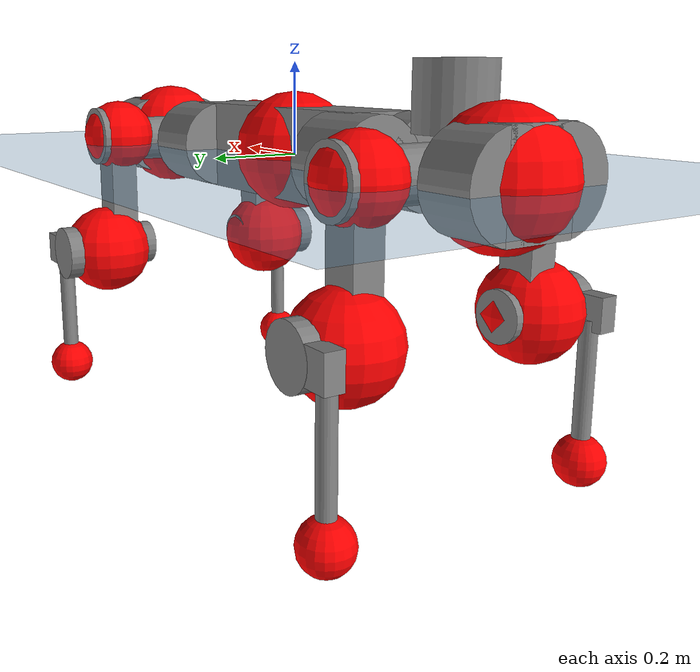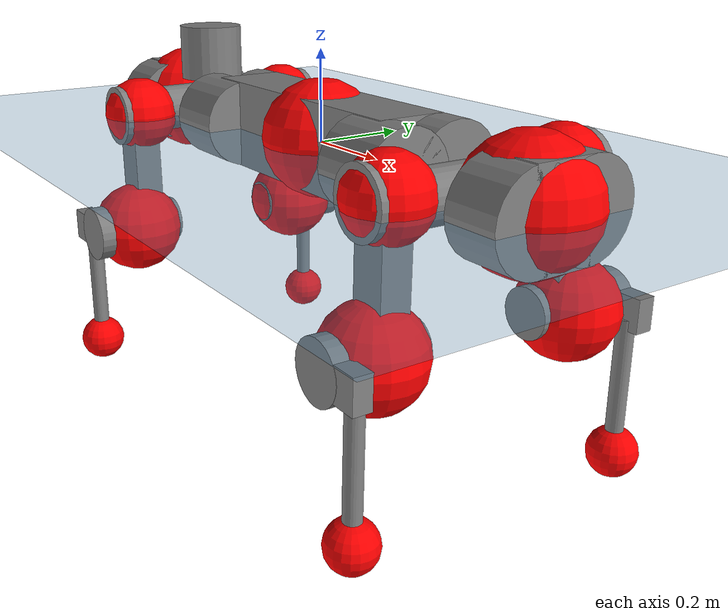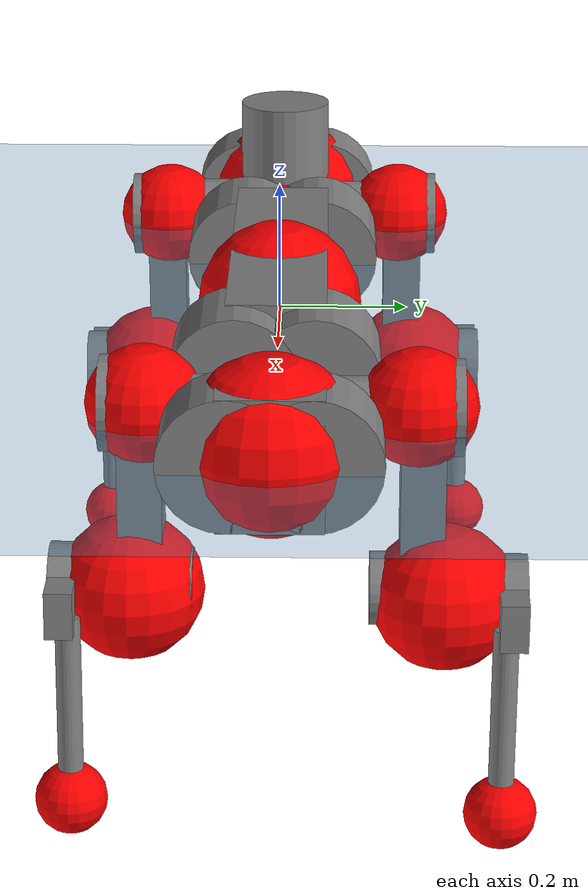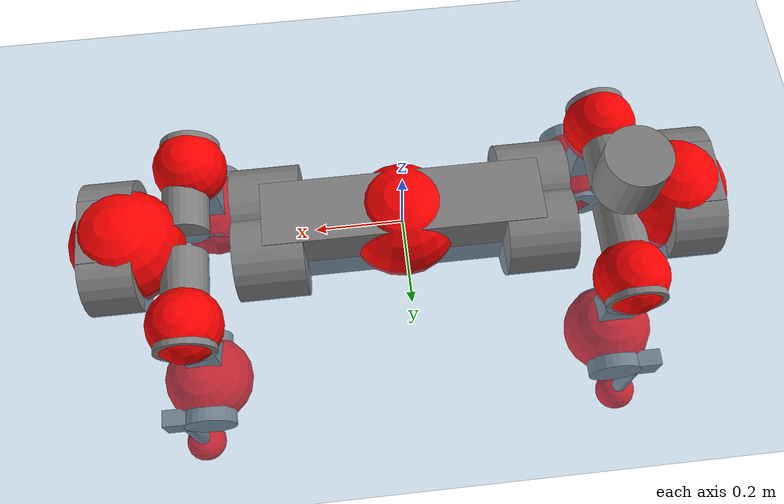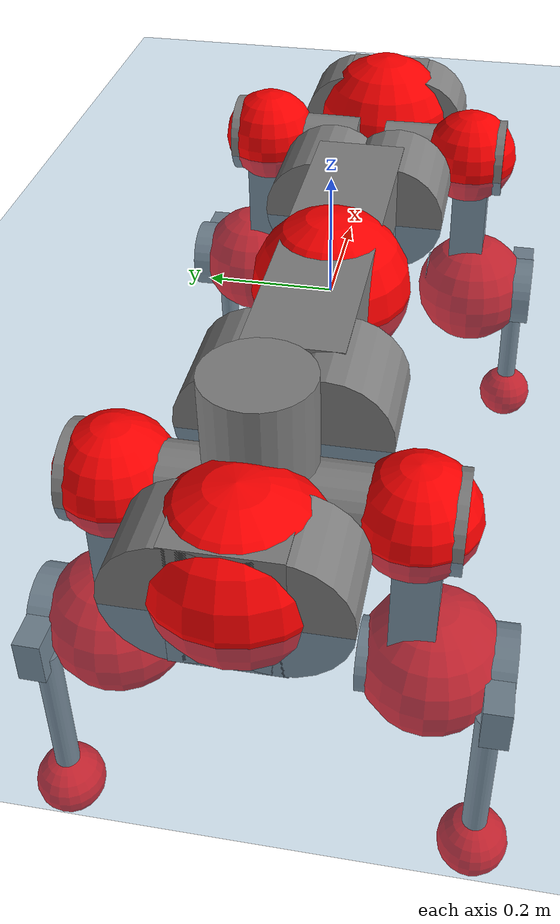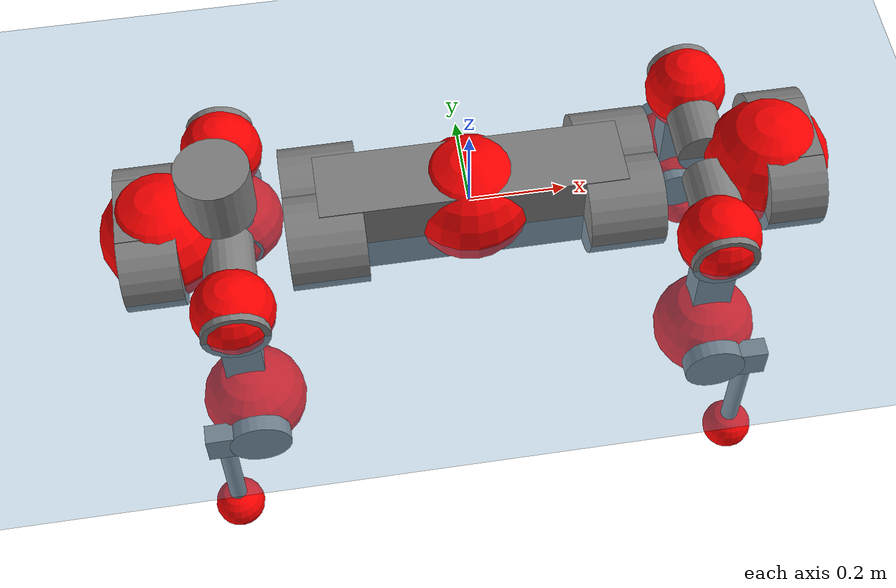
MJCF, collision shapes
<mujoco model="anymal_c">
  <compiler angle="radian" assetdir="assets" balanceinertia="true" inertiafromgeom="false"/>

  <option timestep="0.005" density="1.2" viscosity="2e-05"/>

  <size nkey="1"/>

  <visual>
    <quality shadowsize="8192"/>
    <map shadowclip="0.5"/>
  </visual>

  <default>
    <default class="/">
      <material specular="0" shininess="0.25"/>
      <geom contype="0" conaffinity="0" group="1" solref="-1000 -80"/>
      <site size="0.01 0.005 0.005" group="5"/>
      <general forcelimited="true" forcerange="-80 80" biastype="affine" gainprm="80" biasprm="0 -80 -2"/>
      <default class="anymal_c">
        <joint armature="0.01" damping="0.01" frictionloss="0.1"/>
        <default class="visual">
          <geom type="mesh" group="2"/>
          <default class="visual_zflip"/>
        </default>
        <default class="collision">
          <geom type="cylinder" group="3"/>
          <default class="foot">
            <geom size="0.03 0 0" type="sphere" condim="6" priority="1" friction="0.8 0.02 0.01" solimp="0.015 1 0.03"/>
          </default>
        </default>
      </default>
      <default class="reward_collision_sphere">
        <geom group="5" rgba="1 0 0 1"/>
      </default>
    </default>
  </default>

  <asset>
    <texture type="skybox" colorspace="auto" name="//unnamed_texture_0" builtin="gradient" rgb1="0.95 0.95 0.95" rgb2="0.95 0.95 0.95" width="100" height="600"/>
    <texture type="2d" colorspace="auto" name="texplane" builtin="checker" rgb1="0.345 0.575 0.748" rgb2="0.345 0.575 0.748" markrgb="1 1 1" width="512" height="512"/>
    <texture type="2d" colorspace="linear" name="base" file="base.png"/>
    <texture type="2d" colorspace="linear" name="top_shell" file="top_shell.png"/>
    <texture type="2d" colorspace="linear" name="bottom_shell" file="bottom_shell.png"/>
    <texture type="2d" colorspace="linear" name="remote" file="remote.png"/>
    <texture type="2d" colorspace="linear" name="hatch" file="hatch.png"/>
    <texture type="2d" colorspace="linear" name="handle" file="handle.png"/>
    <texture type="2d" colorspace="linear" name="face" file="face.png"/>
    <texture type="2d" colorspace="linear" name="battery" file="battery.png"/>
    <texture type="2d" colorspace="linear" name="lidar_cage" file="lidar_cage.png"/>
    <texture type="2d" colorspace="linear" name="depth_camera" file="depth_camera.png"/>
    <texture type="2d" colorspace="linear" name="wide_angle_camera" file="wide_angle_camera.png"/>
    <texture type="2d" colorspace="linear" name="lidar" file="lidar.png"/>
    <texture type="2d" colorspace="linear" name="drive" file="drive.png"/>
    <texture type="2d" colorspace="linear" name="hip_l" file="hip_l.png"/>
    <texture type="2d" colorspace="linear" name="shank_l" file="shank_l.png"/>
    <texture type="2d" colorspace="linear" name="foot" file="foot.png"/>
    <texture type="2d" colorspace="linear" name="thigh" file="thigh.png"/>
    <texture type="2d" colorspace="linear" name="shank_r" file="shank_r.png"/>
    <texture type="2d" colorspace="linear" name="hip_r" file="hip_r.png"/>
    <material name="MatPlane" class="/" texture="texplane" texuniform="true" texrepeat="2 2" specular="0.9" shininess="0.5"/>
    <material name="black_plastic" class="/" rgba="0.007 0.007 0.007 1"/>
    <material name="green" class="/" rgba="0.052 0.178 0.033 1"/>
    <material name="red" class="/" rgba="0.178 0.006 0.005 1"/>
    <material name="yellow" class="/" rgba="0.178 0.119 0.006 1"/>
    <material name="lwl" class="/" rgba="0.8 0.8 0.8 1"/>
    <material name="base" class="/" texture="base"/>
    <material name="top_shell" class="/" texture="top_shell"/>
    <material name="bottom_shell" class="/" texture="bottom_shell"/>
    <material name="hip_l" class="/" texture="hip_l"/>
    <material name="thigh" class="/" texture="thigh"/>
    <material name="shank_l" class="/" texture="shank_l"/>
    <material name="foot" class="/" texture="foot"/>
    <material name="hip_r" class="/" texture="hip_r"/>
    <material name="shank" class="/" texture="shank_r"/>
    <material name="hatch" class="/" texture="hatch"/>
    <material name="remote" class="/" texture="remote"/>
    <material name="handle" class="/" texture="handle"/>
    <material name="face" class="/" texture="face"/>
    <material name="depth_camera" class="/" texture="depth_camera"/>
    <material name="wide_angle_camera" class="/" texture="wide_angle_camera"/>
    <material name="battery" class="/" texture="battery"/>
    <material name="lidar_cage" class="/" texture="lidar_cage"/>
    <material name="lidar" class="/" texture="lidar"/>
    <material name="drive" class="/" texture="drive"/>
    <mesh name="base_0" class="/" file="base_0.obj"/>
    <mesh name="base_1" class="/" file="base_1.obj"/>
    <mesh name="base_2" class="/" file="base_2.obj"/>
    <mesh name="base_3" class="/" file="base_3.obj"/>
    <mesh name="base_4" class="/" file="base_4.obj"/>
    <mesh name="base_5" class="/" file="base_5.obj"/>
    <mesh name="top_shell" class="/" file="top_shell.obj"/>
    <mesh name="bottom_shell" class="/" file="bottom_shell.obj"/>
    <mesh name="remote" class="/" file="remote.obj"/>
    <mesh name="handle" class="/" file="handle.obj"/>
    <mesh name="face" class="/" file="face.obj"/>
    <mesh name="wide_angle_camera" class="/" file="wide_angle_camera.obj"/>
    <mesh name="depth_camera" class="/" file="depth_camera.obj"/>
    <mesh name="battery" class="/" file="battery.obj"/>
    <mesh name="lidar_cage" class="/" file="lidar_cage.obj"/>
    <mesh name="lidar" class="/" file="lidar.obj"/>
    <mesh name="drive" class="/" file="drive.obj"/>
    <mesh name="hip_l" class="/" file="hip_l.obj"/>
    <mesh name="thigh" class="/" file="thigh.obj"/>
    <mesh name="shank_l" class="/" file="shank_l.obj"/>
    <mesh name="foot" class="/" file="foot.obj"/>
    <mesh name="hip_r" class="/" file="hip_r.obj"/>
    <mesh name="hatch" class="/" file="hatch.obj"/>
    <mesh name="shank_r" class="/" file="shank_r.obj"/>
  </asset>

  <worldbody>
    <geom name="floor" class="/" size="100 100 0.125" type="plane" group="0" material="MatPlane"/>
    <light name="toplight_shadow" class="/" pos="0 0 5" dir="0.0990148 0.0990148 -0.990148" type="directional" ambient="0.04 0.04 0.04" diffuse="0.55 0.55 0.55" specular="0.12 0.12 0.12"/>
    <light name="toplight_fill" class="/" pos="0 0 5" dir="0.0990148 0.0990148 -0.990148" type="directional" castshadow="false" ambient="0.04 0.04 0.04" diffuse="0.3 0.3 0.3" specular="0.08 0.08 0.08"/>
    <body name="trunk" childclass="anymal_c" pos="0.000622031 -0.000343986 0.00901189" quat="1 1.50701e-06 -9.34815e-05 0.000257333">
      <inertial pos="0.00325887 -0.0128467 0.0395741" quat="0.50093 0.497569 0.500939 0.500553" mass="25.1762" diaginertia="3.12049 0.304672 0.219111"/>
      <joint name="//unnamed_joint_0" type="free" armature="0" damping="0" frictionloss="0"/>
      <geom name="//unnamed_geom_1" class="visual" material="green" mesh="base_0"/>
      <geom name="//unnamed_geom_2" class="visual" material="yellow" mesh="base_1"/>
      <geom name="//unnamed_geom_3" class="visual" material="red" mesh="base_2"/>
      <geom name="//unnamed_geom_4" class="visual" material="black_plastic" mesh="base_3"/>
      <geom name="//unnamed_geom_5" class="visual" material="lwl" mesh="base_4"/>
      <geom name="//unnamed_geom_6" class="visual" material="base" mesh="base_5"/>
      <geom name="trunk_1" class="collision" size="0.312958 0.0755417 0.097125" type="box"/>
      <geom name="trunk_2" class="collision" size="0.097125 0.0782396" pos="0.303444 0.0598228 0" quat="0.707107 0 0.707107 0"/>
      <geom name="trunk_3" class="collision" size="0.097125 0.0782396" pos="-0.303444 0.0598228 0" quat="0.707107 0 0.707107 0"/>
      <geom name="trunk_4" class="collision" size="0.097125 0.0782396" pos="0.303444 -0.0598228 0" quat="0.707107 0 0.707107 0"/>
      <geom name="trunk_5" class="collision" size="0.097125 0.0782396" pos="-0.303444 -0.0598228 0" quat="0.707107 0 0.707107 0"/>
      <geom name="//unnamed_geom_12" class="visual" material="top_shell" mesh="top_shell"/>
      <geom name="//unnamed_geom_13" class="visual" material="bottom_shell" mesh="bottom_shell"/>
      <geom name="//unnamed_geom_14" class="visual" material="remote" mesh="remote"/>
      <geom name="//unnamed_geom_15" class="visual" material="handle" mesh="handle"/>
      <geom name="//unnamed_geom_16" class="visual" pos="0.578288 0 0" quat="1 0 0 0" material="face" mesh="face"/>
      <geom name="trunk_6" class="collision" size="0.0593542 0.0755417 0.097125" pos="0.655021 0 0" type="box"/>
      <geom name="//unnamed_geom_18" class="collision" size="0.097125 0.0593542" pos="0.655021 0.0598228 0" quat="0.707107 0 0.707107 0"/>
      <geom name="//unnamed_geom_19" class="collision" size="0.097125 0.0593542" pos="0.655021 -0.0598228 0" quat="0.707107 0 0.707107 0"/>
      <geom name="//unnamed_geom_20" class="visual" pos="0.644053 0 -0.0257458" quat="0.965926 0 0.258819 0" material="depth_camera" mesh="depth_camera"/>
      <geom name="//unnamed_geom_21" class="visual" pos="0.71571 0 0.0147865" material="wide_angle_camera" mesh="wide_angle_camera"/>
      <geom name="//unnamed_geom_22" class="visual_zflip" pos="-0.578288 0 0" quat="0 0 0 1" material="face" mesh="face"/>
      <geom name="trunk_7" class="collision" size="0.0593542 0.0755417 0.097125" pos="-0.655021 0 0" quat="0 0 0 1" type="box"/>
      <geom name="//unnamed_geom_24" class="collision" size="0.097125 0.0593542" pos="-0.655021 -0.0598228 0" quat="0 -0.707107 0 0.707107"/>
      <geom name="//unnamed_geom_25" class="collision" size="0.097125 0.0593542" pos="-0.655021 0.0598228 0" quat="0 -0.707107 0 0.707107"/>
      <geom name="//unnamed_geom_26" class="visual" pos="-0.644053 0 -0.0257458" quat="0 -0.258819 0 0.965926" material="depth_camera" mesh="depth_camera"/>
      <geom name="//unnamed_geom_27" class="visual_zflip" pos="-0.71571 0 0.0147865" quat="0 0 0 1" material="wide_angle_camera" mesh="wide_angle_camera"/>
      <geom name="//unnamed_geom_28" class="visual" material="battery" mesh="battery"/>
      <geom name="//unnamed_geom_29" class="visual" pos="0 0.0582338 0.0317902" quat="0.683013 -0.183013 0.183013 0.683013" material="depth_camera" mesh="depth_camera"/>
      <geom name="//unnamed_geom_30" class="visual" pos="0 -0.0582338 0.0317902" quat="0.683013 0.183013 0.183013 -0.683013" material="depth_camera" mesh="depth_camera"/>
      <geom name="//unnamed_geom_31" class="visual" pos="-0.507833 0 0.072599" quat="1 0 0 0" material="lidar_cage" mesh="lidar_cage"/>
      <geom name="trunk_8" class="collision" size="0.0755417 0.06475" pos="-0.507833 0 0.131864"/>
      <geom name="//unnamed_geom_33" class="visual" pos="-0.507833 -0.000212362 0.140457" quat="0.707107 0 0 -0.707107" material="lidar" mesh="lidar"/>
      <geom name="//unnamed_geom_34" class="visual" pos="0.418404 0.0889269 -2.29651e-09" quat="0.258819 0.965926 0 0" material="drive" mesh="drive"/>
      <geom name="//unnamed_geom_35" class="visual" pos="0.418404 -0.0889269 2.29651e-09" quat="0.258819 -0.965926 0 0" material="drive" mesh="drive"/>
      <geom name="//unnamed_geom_36" class="visual" pos="-0.418404 0.0889269 2.29651e-09" quat="0 0 0.965926 -0.258819" material="drive" mesh="drive"/>
      <geom name="//unnamed_geom_37" class="visual" pos="-0.418404 -0.0889269 -2.29651e-09" quat="0 0 -0.965926 -0.258819" material="drive" mesh="drive"/>
      <geom name="//unnamed_geom_38" class="visual" pos="0.161837 0 0.0721052" quat="1 0 0 0" material="hatch" mesh="hatch"/>
      <geom name="//unnamed_geom_39" class="reward_collision_sphere" size="0.1295"/>
      <geom name="//unnamed_geom_40" class="reward_collision_sphere" size="0.1295" pos="0.627816 0 0"/>
      <geom name="//unnamed_geom_41" class="reward_collision_sphere" size="0.1295" pos="-0.627816 0 0"/>
      <site name="imu" pos="0.324732 0.0421174 0.0214797" size="0.0107917"/>
      <camera name="track" pos="0 -1.70922 0" quat="0.707107 0.707107 0 0" mode="trackcom"/>
      <camera name="ego_camera" pos="0.627816 0 -0.0395097" quat="-0.5 -0.5 0.5 0.5"/>
      <body name="LF_HIP" pos="0.418258 0.0967809 -0.000604059" quat="0.258306 0.966062 -0.000379649 -0.00153711">
        <inertial pos="0.0902727 -0.0134623 -0.00149526" quat="-0.124083 0.705616 -0.137494 0.683963" mass="3.81071" diaginertia="0.0323889 0.00254606 0.00294506"/>
        <joint name="LF_HAA" pos="0 0 0" axis="0.999998 -0.00181322 9.81398e-06" range="-0.608056 0.509424" armature="0.00626936" damping="0" frictionloss="0.165792"/>
        <geom name="//unnamed_geom_42" class="visual" pos="0 -0.000135093 2.2189e-05" quat="0.258819 -0.965926 0 0" material="hip_l" mesh="hip_l"/>
        <geom name="//unnamed_geom_43" class="visual" pos="0.0835693 -0.0941923 -0.0553667" quat="0.183013 -0.683013 0.683013 0.183013" material="drive" mesh="drive"/>
        <geom name="//unnamed_geom_44" class="collision" size="0.0539583 0.0755417" pos="0.0835693 -0.010221 -0.00682036" quat="-0.353553 -0.612372 0.612372 -0.353553"/>
        <body name="LF_THIGH" pos="0.0832132 -0.06088 -0.0469938" quat="0.182929 -0.682784 0.683411 0.182463">
          <inertial pos="0.0426938 -0.00108552 -0.235823" quat="0.993146 -0.00366144 -0.0804937 0.0846661" mass="4.24787" diaginertia="0.154456 0.0136648 0.00527061"/>
          <joint name="LF_HFE" pos="0 0 0" axis="0.999573 0.0171449 -0.0236421" stiffness="0.0183654" range="-2.97527 3.02869" armature="0.00860497" damping="0.00838302" frictionloss="0.103974"/>
          <geom name="//unnamed_geom_45" class="visual" pos="0.0107545 1.69466e-05 0" quat="0.707107 0 0 -0.707107" material="thigh" mesh="thigh"/>
          <geom name="//unnamed_geom_46" class="collision" size="0.0701459 0.0431667" pos="0.0558059 0 0" quat="0.5 0.5 -0.5 -0.5"/>
          <geom name="//unnamed_geom_47" class="collision" size="0.0404688 0.032375 0.152501" pos="0.0418544 0 -0.139582" quat="0.707107 0 0 -0.707107" type="box"/>
          <geom name="//unnamed_geom_48" class="visual" pos="0.139933 0 -0.281507" quat="1 0 0 0" material="drive" mesh="drive"/>
          <geom name="//unnamed_geom_49" class="collision" size="0.0539583 0.0755417" pos="0.0422729 0 -0.281507" quat="0.707107 0 0.707107 0"/>
          <geom name="//unnamed_geom_50" class="reward_collision_sphere" size="0.0863334" pos="0.0348787 0 0"/>
          <body name="LF_SHANK" pos="0.145536 -0.00883362 -0.291234" quat="0.999981 -0.00179952 0.00282603 -0.00515952">
            <inertial pos="0.00783848 -0.0519031 -0.0808883" quat="0.992592 -0.118419 -0.00222827 -0.027079" mass="0.875728" diaginertia="0.0527661 0.00435495 0.00117377"/>
            <joint name="LF_KFE" pos="0 0 0" axis="0.99987 0.00575073 0.0150476" range="-3.16392 3.18092" armature="0.0141564" damping="0" frictionloss="0.156707"/>
            <geom name="//unnamed_geom_51" class="visual" pos="0.00350681 0.0186985 0" quat="0.707107 0 0 -0.707107" material="shank_l" mesh="shank_l"/>
            <geom name="LF_kfe_act" class="collision" size="0.06475 0.0215833" pos="0.0279029 0 0" quat="0.5 0.5 -0.5 -0.5"/>
            <geom name="//unnamed_geom_53" class="collision" size="0.062051 0.0364219 0.0205042" pos="0.0279029 -0.0491393 0" quat="0.5 0.5 -0.5 -0.5" type="box"/>
            <geom name="//unnamed_geom_54" class="visual" pos="0.0182058 -0.0691374 -0.333827" quat="0.382683 0 0 -0.92388" material="foot" mesh="foot"/>
            <geom name="LF_calf" class="collision" size="0.0188854 0.152434" pos="0.0182067 -0.0751631 -0.166914" quat="0.707107 0 0 -0.707107"/>
            <geom name="LF_foot" class="foot" size="0.0198449" pos="0.0182067 -0.0751631 -0.311603" quat="0.707107 0 0 -0.707107"/>
            <geom name="//unnamed_geom_57" class="reward_collision_sphere" size="0.107917" pos="-0.0697573 0 0"/>
            <geom name="//unnamed_geom_58" class="reward_collision_sphere" size="0.0539583" pos="0.0182067 -0.0751631 -0.311603"/>
            <site name="LF_foot" class="foot" pos="0.0182067 -0.0751631 -0.311603" quat="0.707107 0 0 -0.707107" size="0.0107917"/>
          </body>
        </body>
      </body>
      <body name="RF_HIP" pos="0.414104 -0.0814174 -0.000598275" quat="0.255743 -0.966736 0.00352602 0.00221081">
        <inertial pos="0.0780076 0.0116004 -0.00633601" quat="0.131238 0.680522 0.123464 0.710227" mass="3.81339" diaginertia="0.0356243 0.0027773 0.0030214"/>
        <joint name="RF_HAA" pos="0 0 0" axis="0.999989 0.00177461 0.00436378" range="-0.688102 0.964076" armature="0.0103185" damping="0" frictionloss="0.151533"/>
        <geom name="//unnamed_geom_59" class="visual" pos="0 0.000135092 2.21889e-05" quat="0.258819 0.965926 0 0" material="hip_r" mesh="hip_r"/>
        <geom name="//unnamed_geom_60" class="visual" pos="0.0835693 0.0941923 -0.0553667" quat="0.183013 0.683013 0.683013 -0.183013" material="drive" mesh="drive"/>
        <geom name="//unnamed_geom_61" class="collision" size="0.0539583 0.0755417" pos="0.0835693 0.010221 -0.00682036" quat="-0.353553 0.612372 0.612372 0.353553"/>
        <body name="RF_THIGH" pos="0.0699379 0.0548733 -0.0391767" quat="0.183193 0.682137 0.684148 -0.181857">
          <inertial pos="0.0437929 0.00139597 -0.242911" quat="0.992816 -0.00267148 -0.0761011 0.0922889" mass="3.43938" diaginertia="0.152246 0.0120335 0.00315391"/>
          <joint name="RF_HFE" pos="0 0 0" axis="0.998027 0.0624548 -0.00647199" stiffness="0.00744845" range="-3.42314 3.38499" armature="0.0112593" damping="0.053813" frictionloss="0.123382"/>
          <geom name="//unnamed_geom_62" class="visual" pos="0.0107545 1.69466e-05 0" quat="0.707107 0 0 -0.707107" material="thigh" mesh="thigh"/>
          <geom name="//unnamed_geom_63" class="collision" size="0.0701459 0.0431667" pos="0.0558059 0 0" quat="0.5 0.5 0.5 0.5"/>
          <geom name="//unnamed_geom_64" class="collision" size="0.0404688 0.032375 0.152501" pos="0.0418544 0 -0.139582" quat="0.707107 0 0 0.707107" type="box"/>
          <geom name="//unnamed_geom_65" class="visual" pos="0.139933 0 -0.281507" quat="1 0 0 0" material="drive" mesh="drive"/>
          <geom name="//unnamed_geom_66" class="collision" size="0.0539583 0.0755417" pos="0.0422729 0 -0.281507" quat="0.707107 0 0.707107 0"/>
          <geom name="//unnamed_geom_67" class="reward_collision_sphere" size="0.0863334" pos="0.0348787 0 0"/>
          <body name="RF_SHANK" pos="0.127326 -0.00247167 -0.288119" quat="0.999999 3.89835e-05 -0.00108685 0.000220349">
            <inertial pos="0.0126416 0.0551937 -0.0931247" quat="0.992483 0.121602 0.0087208 0.0106897" mass="0.887887" diaginertia="0.0494736 0.00424273 0.00105964"/>
            <joint name="RF_KFE" pos="0 0 0" axis="0.997444 0.0288987 0.0653484" stiffness="0.0227069" range="-3.21109 3.35387" armature="0.0117762" damping="0" frictionloss="0.184444"/>
            <geom name="//unnamed_geom_68" class="visual" pos="0.00350679 -0.0186985 0" quat="0.707107 0 0 0.707107" material="shank" mesh="shank_r"/>
            <geom name="RF_kfe_act" class="collision" size="0.06475 0.0215833" pos="0.0279029 0 0" quat="0.5 0.5 0.5 0.5"/>
            <geom name="//unnamed_geom_70" class="collision" size="0.062051 0.0364219 0.0205042" pos="0.0279029 0.0491393 0" quat="0.5 0.5 0.5 0.5" type="box"/>
            <geom name="//unnamed_geom_71" class="visual" pos="0.0182075 0.0691374 -0.333827" quat="0.382683 0 0 0.92388" material="foot" mesh="foot"/>
            <geom name="RF_calf" class="collision" size="0.0188854 0.152434" pos="0.0182067 0.0751631 -0.166914" quat="0.707107 0 0 0.707107"/>
            <geom name="RF_foot" class="foot" size="0.0290914" pos="0.0182067 0.0751631 -0.311603" quat="0.707107 0 0 0.707107"/>
            <geom name="//unnamed_geom_74" class="reward_collision_sphere" size="0.107917" pos="-0.0697573 0 0"/>
            <geom name="//unnamed_geom_75" class="reward_collision_sphere" size="0.0539583" pos="0.0182067 0.0751631 -0.311603"/>
            <site name="RF_foot" class="foot" pos="0.0182067 0.0751631 -0.311603" quat="0.707107 0 0 0.707107" size="0.0107917"/>
          </body>
        </body>
      </body>
      <body name="LH_HIP" pos="-0.41567 0.0796496 -0.000503842" quat="-4.47147e-05 0.000197761 0.966056 -0.258332">
        <inertial pos="0.0855457 0.0239771 -0.0101152" quat="0.176081 0.716572 0.105353 0.666649" mass="4.10606" diaginertia="0.0291163 0.00200047 0.00329801"/>
        <joint name="LH_HAA" pos="0 0 0" axis="0.998965 0.0338411 -0.030401" stiffness="0.0479296" range="-0.54713 0.84639" armature="0.0113767" damping="0.049354" frictionloss="0.0723222"/>
        <geom name="//unnamed_geom_76" class="visual" pos="0 0.000135092 2.21889e-05" quat="-0.258819 -0.965926 0 0" material="hip_r" mesh="hip_r"/>
        <geom name="//unnamed_geom_77" class="visual" pos="0.0835693 0.0941923 -0.0553667" quat="0.183013 0.683013 0.683013 -0.183013" material="drive" mesh="drive"/>
        <geom name="//unnamed_geom_78" class="collision" size="0.0539583 0.0755417" pos="0.0835693 0.010221 -0.00682036" quat="-0.353553 0.612372 0.612372 0.353553"/>
        <body name="LH_THIGH" pos="0.0834307 0.0731433 -0.0408013" quat="0.18256 0.68067 0.68521 -0.183978">
          <inertial pos="0.0473994 0.00889893 -0.242912" quat="0.994432 -0.0226707 -0.0651065 0.0797034" mass="3.68201" diaginertia="0.138526 0.0125276 0.00306199"/>
          <joint name="LH_HFE" pos="0 0 0" axis="0.999991 -0.00397292 -0.0011462" range="-3.16146 3.16574" armature="0.0110414" damping="0.0264842" frictionloss="0.112433"/>
          <geom name="//unnamed_geom_79" class="visual" pos="0.0107545 1.69466e-05 0" quat="0.707107 0 0 -0.707107" material="thigh" mesh="thigh"/>
          <geom name="//unnamed_geom_80" class="collision" size="0.0701459 0.0431667" pos="0.0558059 0 0" quat="0.5 0.5 -0.5 -0.5"/>
          <geom name="//unnamed_geom_81" class="collision" size="0.0404688 0.032375 0.152501" pos="0.0418544 0 -0.139582" quat="0.707107 0 0 -0.707107" type="box"/>
          <geom name="//unnamed_geom_82" class="visual" pos="0.139933 0 -0.281507" quat="1 0 0 0" material="drive" mesh="drive"/>
          <geom name="//unnamed_geom_83" class="collision" size="0.0539583 0.0755417" pos="0.0422729 0 -0.281507" quat="0.707107 0 0.707107 0"/>
          <geom name="//unnamed_geom_84" class="reward_collision_sphere" size="0.0863334" pos="0.0348787 0 0"/>
          <body name="LH_SHANK" pos="0.13034 0.00101595 -0.28216" quat="0.999986 0.00445941 6.76411e-05 -0.00283292">
            <inertial pos="-0.00226028 0.0566926 -0.0710734" quat="0.993024 0.115167 0.000680642 0.0252733" mass="0.689683" diaginertia="0.0459822 0.00291507 0.000699612"/>
            <joint name="LH_KFE" pos="0 0 0" axis="0.999237 -0.0387758 -0.0046697" stiffness="0.00224498" range="-3.1666 3.43676" armature="0.0106449" damping="0" frictionloss="0.0742643"/>
            <geom name="//unnamed_geom_85" class="visual" pos="0.00350679 -0.0186985 0" quat="-0.707107 0 0 -0.707107" material="shank" mesh="shank_r"/>
            <geom name="LH_kfe_act" class="collision" size="0.06475 0.0215833" pos="0.0279029 0 0" quat="0.5 0.5 -0.5 -0.5"/>
            <geom name="//unnamed_geom_87" class="collision" size="0.062051 0.0364219 0.0205042" pos="0.0279029 0.0491393 0" quat="0.5 0.5 -0.5 -0.5" type="box"/>
            <geom name="//unnamed_geom_88" class="visual" pos="0.0182075 0.0691374 -0.333827" quat="-0.382683 0 0 -0.92388" material="foot" mesh="foot"/>
            <geom name="LH_calf" class="collision" size="0.0188854 0.152434" pos="0.0182067 0.0751631 -0.166914" quat="0.707107 0 0 -0.707107"/>
            <geom name="LH_foot" class="foot" size="0.0478509" pos="0.0182067 0.0751631 -0.311603" quat="0.707107 0 0 -0.707107"/>
            <geom name="//unnamed_geom_91" class="reward_collision_sphere" size="0.107917" pos="-0.0697573 0 0"/>
            <geom name="//unnamed_geom_92" class="reward_collision_sphere" size="0.0539583" pos="0.0182067 0.0751631 -0.311603"/>
            <site name="LH_foot" class="foot" pos="0.0182067 0.0751631 -0.311603" quat="0.707107 0 0 -0.707107" size="0.0107917"/>
          </body>
        </body>
      </body>
      <body name="RH_HIP" pos="-0.419729 -0.098932 0.00175413" quat="-0.000257128 0.00277257 -0.96464 -0.263557">
        <inertial pos="0.0763828 -0.0193955 -0.00246115" quat="-0.0948426 0.711192 -0.0744346 0.692583" mass="4.02242" diaginertia="0.030799 0.00267063 0.00337621"/>
        <joint name="RH_HAA" pos="0 0 0" axis="0.999756 -0.0220813 -0.000413826" stiffness="0.0182399" range="-0.499265 0.430612" armature="0.0174967" damping="0.0238392" frictionloss="0.065202"/>
        <geom name="//unnamed_geom_93" class="visual" pos="0 -0.000135093 2.2189e-05" quat="-0.258819 0.965926 0 0" material="hip_l" mesh="hip_l"/>
        <geom name="//unnamed_geom_94" class="visual" pos="0.0835693 -0.0941923 -0.0553667" quat="-0.183013 0.683013 -0.683013 -0.183013" material="drive" mesh="drive"/>
        <geom name="//unnamed_geom_95" class="collision" size="0.0539583 0.0755417" pos="0.0835693 -0.010221 -0.00682036" quat="0.353553 0.612372 -0.612372 0.353553"/>
        <body name="RH_THIGH" pos="0.0849074 -0.0610337 -0.0285153" quat="-0.183069 0.682751 -0.683355 -0.182655">
          <inertial pos="0.0436419 -0.0143905 -0.249916" quat="0.992556 -0.0489438 -0.0922901 0.0626093" mass="4.48031" diaginertia="0.188578 0.0159201 0.00467964"/>
          <joint name="RH_HFE" pos="0 0 0" axis="0.999174 0.00699696 0.0400411" range="-3.24808 3.38771" armature="0.00243518" damping="0" frictionloss="0.0862269"/>
          <geom name="//unnamed_geom_96" class="visual" pos="0.0107545 1.69466e-05 0" quat="0.707107 0 0 -0.707107" material="thigh" mesh="thigh"/>
          <geom name="//unnamed_geom_97" class="collision" size="0.0701459 0.0431667" pos="0.0558059 0 0" quat="0.5 0.5 0.5 0.5"/>
          <geom name="//unnamed_geom_98" class="collision" size="0.0404688 0.032375 0.152501" pos="0.0418544 0 -0.139582" quat="0.707107 0 0 0.707107" type="box"/>
          <geom name="//unnamed_geom_99" class="visual" pos="0.139933 0 -0.281507" quat="1 0 0 0" material="drive" mesh="drive"/>
          <geom name="//unnamed_geom_100" class="collision" size="0.0539583 0.0755417" pos="0.0422729 0 -0.281507" quat="0.707107 0 0.707107 0"/>
          <geom name="//unnamed_geom_101" class="reward_collision_sphere" size="0.0863334" pos="0.0348787 0 0"/>
          <body name="RH_SHANK" pos="0.139321 0.00997355 -0.283245" quat="0.999989 -0.00331208 -0.00233332 0.0023038">
            <inertial pos="0.00124945 -0.0533102 -0.080843" quat="0.996814 -0.0654073 -0.0421456 -0.017551" mass="0.918683" diaginertia="0.0564375 0.00477417 0.000931853"/>
            <joint name="RH_KFE" pos="0 0 0" axis="0.998198 -0.0298351 0.0520541" range="-3.34324 2.90707" armature="0.0106916" damping="0.0072796" frictionloss="0.0993135"/>
            <geom name="//unnamed_geom_102" class="visual" pos="0.00350681 0.0186985 0" quat="0.707107 0 0 -0.707107" material="shank_l" mesh="shank_l"/>
            <geom name="RH_kfe_act" class="collision" size="0.06475 0.0215833" pos="0.0279029 0 0" quat="0.5 0.5 0.5 0.5"/>
            <geom name="//unnamed_geom_104" class="collision" size="0.062051 0.0364219 0.0205042" pos="0.0279029 -0.0491393 0" quat="0.5 0.5 0.5 0.5" type="box"/>
            <geom name="//unnamed_geom_105" class="visual" pos="0.0182058 -0.0691374 -0.333827" quat="0.382683 0 0 -0.92388" material="foot" mesh="foot"/>
            <geom name="RH_calf" class="collision" size="0.0188854 0.152434" pos="0.0182067 -0.0751631 -0.166914" quat="0.707107 0 0 0.707107"/>
            <geom name="RH_foot" class="foot" size="0.0496032" pos="0.0182067 -0.0751631 -0.311603" quat="0.707107 0 0 0.707107"/>
            <geom name="//unnamed_geom_108" class="reward_collision_sphere" size="0.107917" pos="-0.0697573 0 0"/>
            <geom name="//unnamed_geom_109" class="reward_collision_sphere" size="0.0539583" pos="0.0182067 -0.0751631 -0.311603"/>
            <site name="RH_foot" class="foot" pos="0.0182067 -0.0751631 -0.311603" quat="0.707107 0 0 0.707107" size="0.0107917"/>
          </body>
        </body>
      </body>
    </body>
  </worldbody>

  <contact>
    <pair class="/" geom1="floor" geom2="LF_foot" name="//unnamed_contact_0"/>
    <pair class="/" geom1="floor" geom2="RF_foot" name="//unnamed_contact_1"/>
    <pair class="/" geom1="floor" geom2="LH_foot" name="//unnamed_contact_2"/>
    <pair class="/" geom1="floor" geom2="RH_foot" name="//unnamed_contact_3"/>
  </contact>

  <actuator>
    <general name="LF_HAA" class="/" joint="LF_HAA" forcerange="-109.421 109.421" gainprm="59.3018" biasprm="0 -59.3018 -1.86056"/>
    <general name="LF_HFE" class="/" joint="LF_HFE" forcerange="-131.889 131.889" gainprm="59.3018" biasprm="0 -59.3018 -1.86056"/>
    <general name="LF_KFE" class="/" joint="LF_KFE" forcerange="-75.9027 75.9027" gainprm="59.3018" biasprm="0 -59.3018 -1.86056"/>
    <general name="RF_HAA" class="/" joint="RF_HAA" forcerange="-98.9141 98.9141" gainprm="59.3018" biasprm="0 -59.3018 -1.86056"/>
    <general name="RF_HFE" class="/" joint="RF_HFE" forcerange="-71.6244 71.6244" gainprm="59.3018" biasprm="0 -59.3018 -1.86056"/>
    <general name="RF_KFE" class="/" joint="RF_KFE" forcerange="-105.645 105.645" gainprm="59.3018" biasprm="0 -59.3018 -1.86056"/>
    <general name="LH_HAA" class="/" joint="LH_HAA" forcerange="-59.3209 59.3209" gainprm="59.3018" biasprm="0 -59.3018 -1.86056"/>
    <general name="LH_HFE" class="/" joint="LH_HFE" forcerange="-85.5622 85.5622" gainprm="59.3018" biasprm="0 -59.3018 -1.86056"/>
    <general name="LH_KFE" class="/" joint="LH_KFE" forcerange="-108.104 108.104" gainprm="59.3018" biasprm="0 -59.3018 -1.86056"/>
    <general name="RH_HAA" class="/" joint="RH_HAA" forcerange="-131.079 131.079" gainprm="59.3018" biasprm="0 -59.3018 -1.86056"/>
    <general name="RH_HFE" class="/" joint="RH_HFE" forcerange="-93.1572 93.1572" gainprm="59.3018" biasprm="0 -59.3018 -1.86056"/>
    <general name="RH_KFE" class="/" joint="RH_KFE" forcerange="-94.9497 94.9497" gainprm="59.3018" biasprm="0 -59.3018 -1.86056"/>
  </actuator>

  <sensor>
    <gyro site="imu" name="imu_angular_velocity"/>
    <velocimeter site="imu" name="imu_linear_velocity"/>
    <framelinvel objtype="site" objname="LF_foot" name="LF_foot_global_linear_velocity"/>
    <framelinvel objtype="site" objname="RF_foot" name="RF_foot_global_linear_velocity"/>
    <framelinvel objtype="site" objname="LH_foot" name="LH_foot_global_linear_velocity"/>
    <framelinvel objtype="site" objname="RH_foot" name="RH_foot_global_linear_velocity"/>
  </sensor>

  <keyframe>
    <key name="home" qpos="0 0 0.55 1 0 0 0 0 0.4 -0.8 0 -0.4 0.8 0 -0.4 0.8 0 0.4 -0.8"/>
  </keyframe>
</mujoco>
